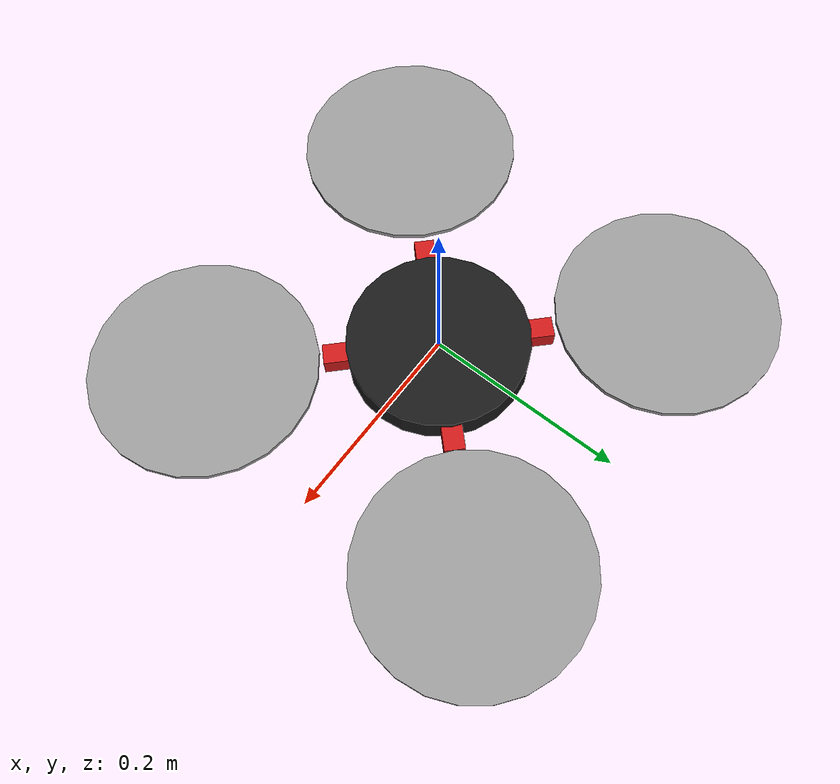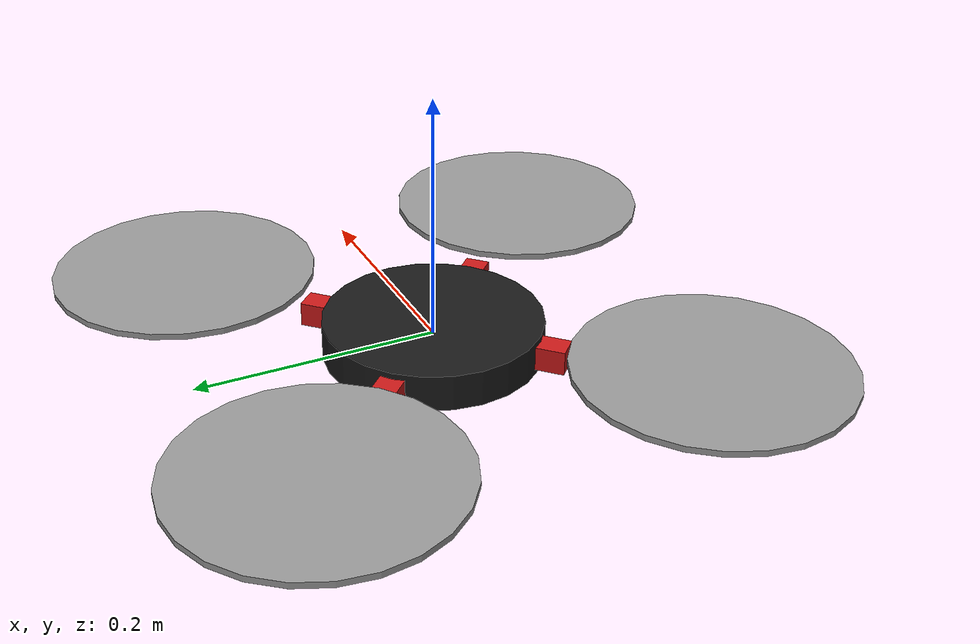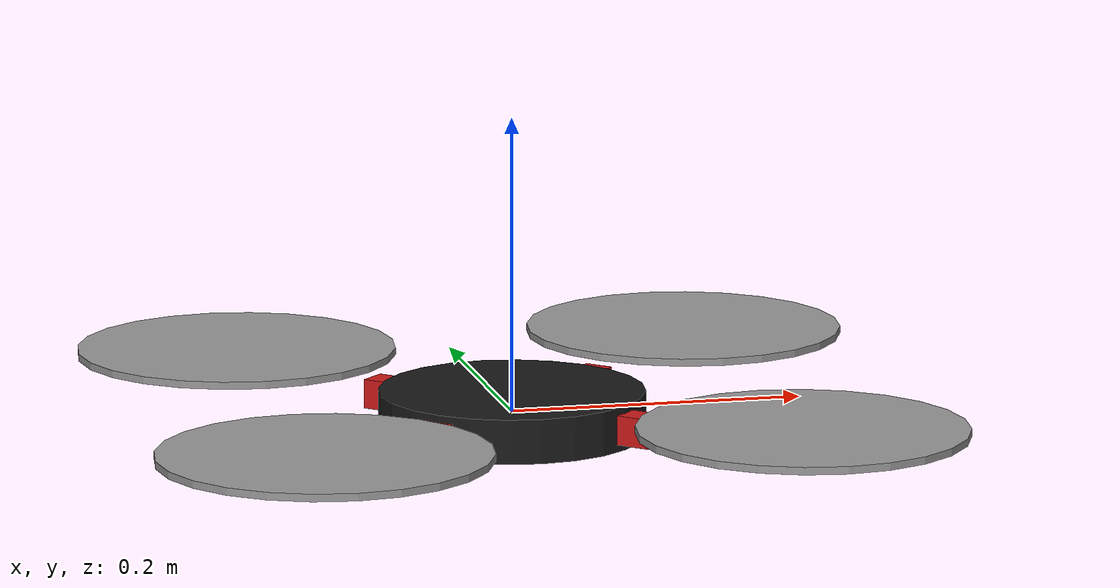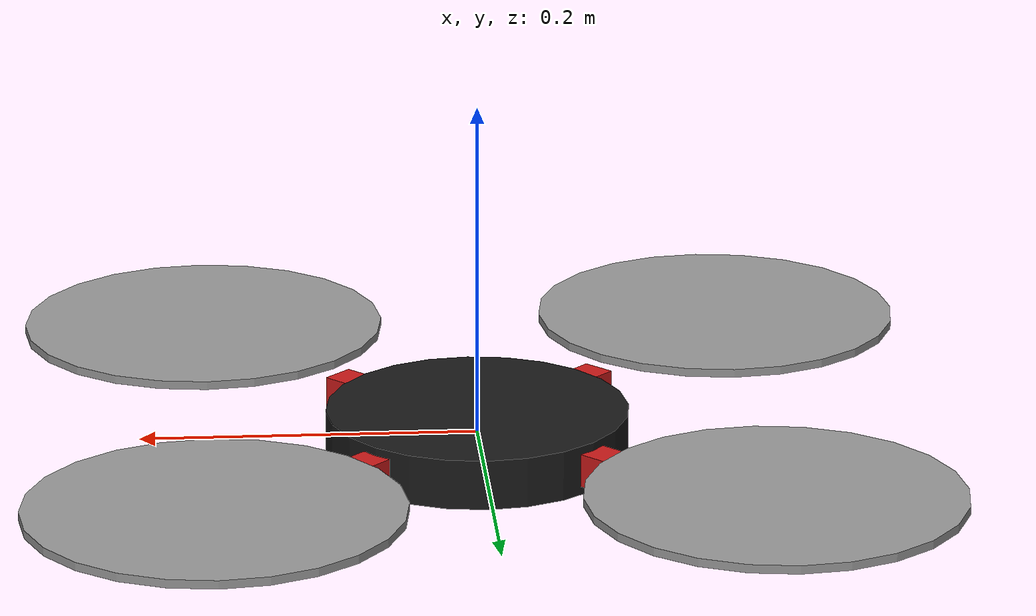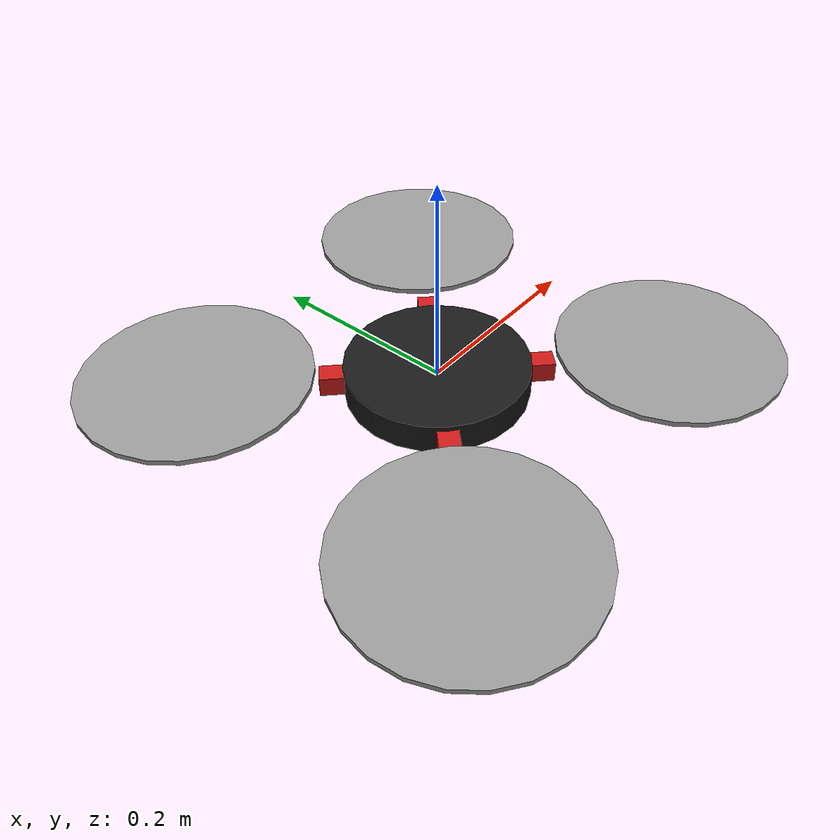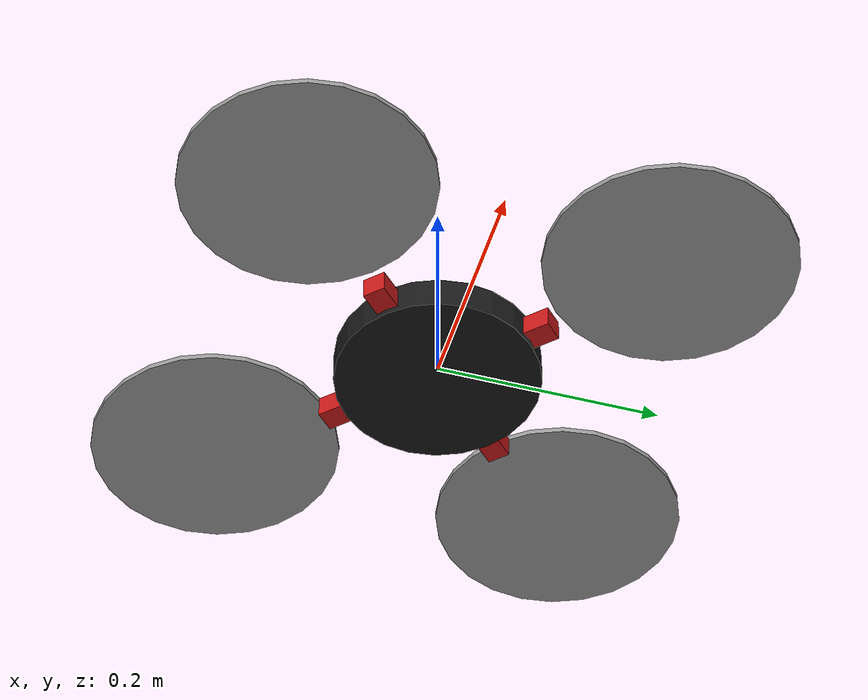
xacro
<?xml version="1.0"?>
<robot xmlns:xacro="http://ros.org/wiki/xacro" name="f450">
  <!-- Parameters -->
  <xacro:property name="frame_radius" value="0.225"/>   <!-- ~450mm diagonal => ~225mm arm half-length -->
  <xacro:property name="body_radius"  value="0.09"/>    <!-- central plate radius -->
  <xacro:property name="body_height"  value="0.03"/>
  <xacro:property name="body_mass"    value="0.5"/>     <!-- tweak with real mass -->
  <xacro:property name="arm_mass"     value="0.08"/>
  <xacro:property name="rotor_mass"   value="0.03"/>

  <!-- Inertial helper -->
  <xacro:macro name="inertial_cylinder" params="m r h">
    <inertial>
      <origin xyz="0 0 0" rpy="0 0 0"/>
      <mass value="${m}"/>
      <!-- Approximate inertia for solid cylinder (about center, z as axis) -->
      <inertia
        ixx="${(1/12.0)*m*(3*r*r + h*h)}"
        iyy="${(1/12.0)*m*(3*r*r + h*h)}"
        izz="${0.5*m*r*r}"/>
    </inertial>
  </xacro:macro>

  <!-- Base link (central plate) -->
  <link name="base_link">
    <visual>
      <origin xyz="0 0 0" rpy="0 0 0"/>
      <geometry><cylinder radius="${body_radius}" length="${body_height}"/></geometry>
      <material name="black"><color rgba="0.1 0.1 0.1 1.0"/></material>
    </visual>
    <collision>
      <origin xyz="0 0 0" rpy="0 0 0"/>
      <geometry><cylinder radius="${body_radius}" length="${body_height}"/></geometry>
    </collision>
    <xacro:inertial_cylinder m="${body_mass}" r="${body_radius}" h="${body_height}"/>
  </link>

  <!-- Arms + rotors (x4) -->
  <xacro:macro name="arm_with_rotor" params="name angle">
    <!-- arm link -->
    <link name="${name}_arm">
      <visual>
        <origin xyz="0 0 0" rpy="0 0 0"/>
        <geometry><box size="${frame_radius} 0.02 0.02"/></geometry>
        <material name="red"><color rgba="0.8 0.1 0.1 1.0"/></material>
      </visual>
      <collision>
        <origin xyz="0 0 0" rpy="0 0 0"/>
        <geometry><box size="${frame_radius} 0.02 0.02"/></geometry>
      </collision>
      <inertial>
        <origin xyz="${frame_radius/2} 0 0" rpy="0 0 0"/>
        <mass value="${arm_mass}"/>
        <inertia ixx="0.0005" iyy="0.002" izz="0.002" ixy="0" ixz="0" iyz="0"/>
      </inertial>
    </link>

    <joint name="base_to_${name}_arm" type="fixed">
      <origin xyz="0 0 0" rpy="0 0 ${angle}"/>
      <parent link="base_link"/>
      <child link="${name}_arm"/>
    </joint>

    <!-- rotor at arm tip -->
    <link name="${name}_rotor">
      <visual>
        <origin xyz="${frame_radius} 0 0.015" rpy="0 0 0"/>
        <geometry><cylinder radius="0.11" length="0.005"/></geometry>
        <material name="grey"><color rgba="0.6 0.6 0.6 1.0"/></material>
      </visual>
      <collision>
        <origin xyz="${frame_radius} 0 0.015" rpy="0 0 0"/>
        <geometry><cylinder radius="0.11" length="0.005"/></geometry>
      </collision>
      <inertial>
        <origin xyz="${frame_radius} 0 0.015" rpy="0 0 0"/>
        <mass value="${rotor_mass}"/>
        <inertia ixx="0.0001" iyy="0.0001" izz="0.0001" ixy="0" ixz="0" iyz="0"/>
      </inertial>
    </link>

    <joint name="${name}_arm_to_rotor" type="fixed">
      <origin xyz="0 0 0" rpy="0 0 0"/>
      <parent link="${name}_arm"/>
      <child link="${name}_rotor"/>
    </joint>
  </xacro:macro>

  <xacro:arm_with_rotor name="front_right" angle="${-45 * 3.14159265/180.0}"/>
  <xacro:arm_with_rotor name="rear_right"  angle="${-135 * 3.14159265/180.0}"/>
  <xacro:arm_with_rotor name="rear_left"   angle="${135 * 3.14159265/180.0}"/>
  <xacro:arm_with_rotor name="front_left"  angle="${45 * 3.14159265/180.0}"/>

</robot>
